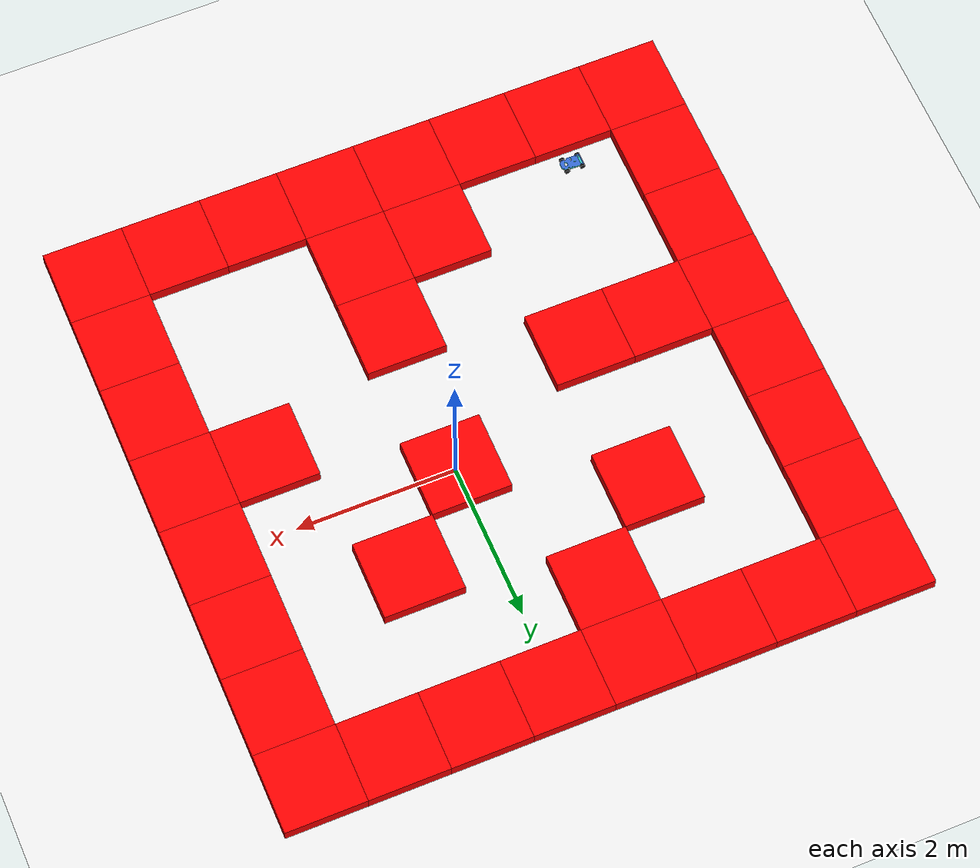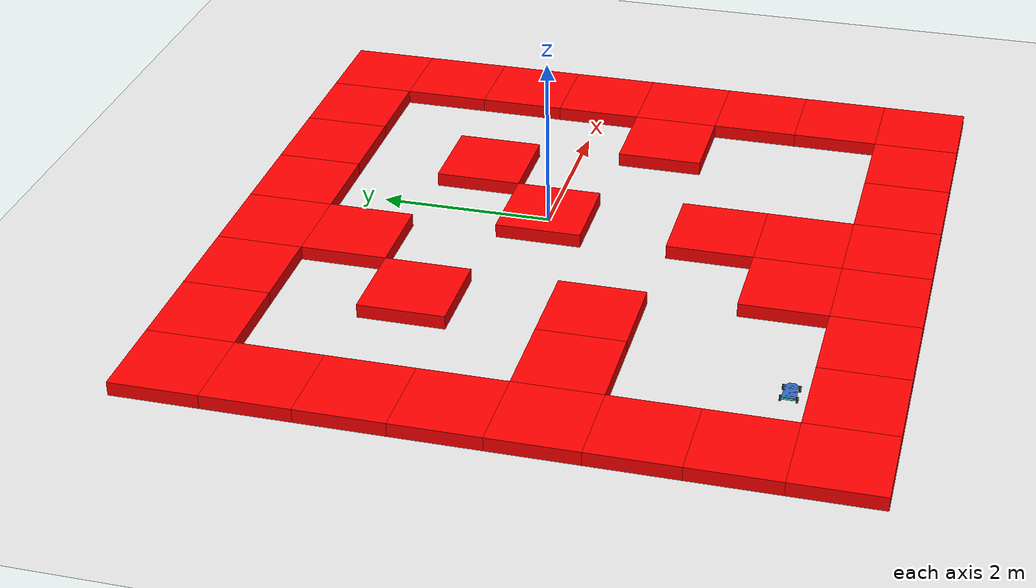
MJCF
<mujoco model="ackermann_maze_flat">

  <compiler angle="degree"/>

  <default>
    <geom solref="0.01 1" solimp="0.95 0.98 0.002"/>
  </default>

  <option timestep="0.002" gravity="0 0 -9.81"/>

  <asset>
    <mesh name="Base" file="../CAD Models/Base.stl"/>
  </asset>

  <asset>
    <mesh name="Ceiling" file="../CAD Models/Ceiling.stl"/>
  </asset>

  <worldbody>
    <light name="top" pos="0 0 3" dir="0 0 -1" diffuse=".6 .6 .6" specular="0.1 0.1 0.1"/>
    <geom name="floor" pos="0 0 0" size="40 40 .1" type="plane"
      rgba="0.9 0.9 0.9 1" friction="1 0.005 0.0001"/>

    <!-- Maze obstacles (from mobile-mujoco-environments/envs/assets/maze.xml) -->
    <body name="obstacle_0">
      <geom name="obstacle_0" type="box" size="0.5 0.5 0.1" pos="-4.0 -4.0 0.05" rgba="1 0 0 1"/>
    </body>
    <body name="obstacle_1">
      <geom name="obstacle_1" type="box" size="0.5 0.5 0.1" pos="-4.0 -3.0 0.05" rgba="1 0 0 1"/>
    </body>
    <body name="obstacle_2">
      <geom name="obstacle_2" type="box" size="0.5 0.5 0.1" pos="-4.0 -2.0 0.05" rgba="1 0 0 1"/>
    </body>
    <body name="obstacle_3">
      <geom name="obstacle_3" type="box" size="0.5 0.5 0.1" pos="-4.0 -1.0 0.05" rgba="1 0 0 1"/>
    </body>
    <body name="obstacle_4">
      <geom name="obstacle_4" type="box" size="0.5 0.5 0.1" pos="-4.0 0.0 0.05" rgba="1 0 0 1"/>
    </body>
    <body name="obstacle_5">
      <geom name="obstacle_5" type="box" size="0.5 0.5 0.1" pos="-4.0 1.0 0.05" rgba="1 0 0 1"/>
    </body>
    <body name="obstacle_6">
      <geom name="obstacle_6" type="box" size="0.5 0.5 0.1" pos="-4.0 2.0 0.05" rgba="1 0 0 1"/>
    </body>
    <body name="obstacle_7">
      <geom name="obstacle_7" type="box" size="0.5 0.5 0.1" pos="-4.0 3.0 0.05" rgba="1 0 0 1"/>
    </body>
    <body name="obstacle_8">
      <geom name="obstacle_8" type="box" size="0.5 0.5 0.1" pos="-3.0 -4.0 0.05" rgba="1 0 0 1"/>
    </body>
    <body name="obstacle_9">
      <geom name="obstacle_9" type="box" size="0.5 0.5 0.1" pos="-3.0 -1.0 0.05" rgba="1 0 0 1"/>
    </body>
    <body name="obstacle_10">
      <geom name="obstacle_10" type="box" size="0.5 0.5 0.1" pos="-3.0 3.0 0.05" rgba="1 0 0 1"/>
    </body>
    <body name="obstacle_11">
      <geom name="obstacle_11" type="box" size="0.5 0.5 0.1" pos="-2.0 -4.0 0.05" rgba="1 0 0 1"/>
    </body>
    <body name="obstacle_12">
      <geom name="obstacle_12" type="box" size="0.5 0.5 0.1" pos="-2.0 -1.0 0.05" rgba="1 0 0 1"/>
    </body>
    <body name="obstacle_13">
      <geom name="obstacle_13" type="box" size="0.5 0.5 0.1" pos="-2.0 1.0 0.05" rgba="1 0 0 1"/>
    </body>
    <body name="obstacle_14">
      <geom name="obstacle_14" type="box" size="0.5 0.5 0.1" pos="-2.0 3.0 0.05" rgba="1 0 0 1"/>
    </body>
    <body name="obstacle_15">
      <geom name="obstacle_15" type="box" size="0.5 0.5 0.1" pos="-1.0 -4.0 0.05" rgba="1 0 0 1"/>
    </body>
    <body name="obstacle_16">
      <geom name="obstacle_16" type="box" size="0.5 0.5 0.1" pos="-1.0 -3.0 0.05" rgba="1 0 0 1"/>
    </body>
    <body name="obstacle_17">
      <geom name="obstacle_17" type="box" size="0.5 0.5 0.1" pos="-1.0 2.0 0.05" rgba="1 0 0 1"/>
    </body>
    <body name="obstacle_18">
      <geom name="obstacle_18" type="box" size="0.5 0.5 0.1" pos="-1.0 3.0 0.05" rgba="1 0 0 1"/>
    </body>
    <body name="obstacle_19">
      <geom name="obstacle_19" type="box" size="0.5 0.5 0.1" pos="0.0 -4.0 0.05" rgba="1 0 0 1"/>
    </body>
    <body name="obstacle_20">
      <geom name="obstacle_20" type="box" size="0.5 0.5 0.1" pos="0.0 -3.0 0.05" rgba="1 0 0 1"/>
    </body>
    <body name="obstacle_21">
      <geom name="obstacle_21" type="box" size="0.5 0.5 0.1" pos="0.0 -2.0 0.05" rgba="1 0 0 1"/>
    </body>
    <body name="obstacle_22">
      <geom name="obstacle_22" type="box" size="0.5 0.5 0.1" pos="0.0 0.0 0.05" rgba="1 0 0 1"/>
    </body>
    <body name="obstacle_23">
      <geom name="obstacle_23" type="box" size="0.5 0.5 0.1" pos="0.0 3.0 0.05" rgba="1 0 0 1"/>
    </body>
    <body name="obstacle_24">
      <geom name="obstacle_24" type="box" size="0.5 0.5 0.1" pos="1.0 -4.0 0.05" rgba="1 0 0 1"/>
    </body>
    <body name="obstacle_25">
      <geom name="obstacle_25" type="box" size="0.5 0.5 0.1" pos="1.0 1.0 0.05" rgba="1 0 0 1"/>
    </body>
    <body name="obstacle_26">
      <geom name="obstacle_26" type="box" size="0.5 0.5 0.1" pos="1.0 3.0 0.05" rgba="1 0 0 1"/>
    </body>
    <body name="obstacle_27">
      <geom name="obstacle_27" type="box" size="0.5 0.5 0.1" pos="2.0 -4.0 0.05" rgba="1 0 0 1"/>
    </body>
    <body name="obstacle_28">
      <geom name="obstacle_28" type="box" size="0.5 0.5 0.1" pos="2.0 -1.0 0.05" rgba="1 0 0 1"/>
    </body>
    <body name="obstacle_29">
      <geom name="obstacle_29" type="box" size="0.5 0.5 0.1" pos="2.0 3.0 0.05" rgba="1 0 0 1"/>
    </body>
    <body name="obstacle_30">
      <geom name="obstacle_30" type="box" size="0.5 0.5 0.1" pos="3.0 -4.0 0.05" rgba="1 0 0 1"/>
    </body>
    <body name="obstacle_31">
      <geom name="obstacle_31" type="box" size="0.5 0.5 0.1" pos="3.0 -3.0 0.05" rgba="1 0 0 1"/>
    </body>
    <body name="obstacle_32">
      <geom name="obstacle_32" type="box" size="0.5 0.5 0.1" pos="3.0 -2.0 0.05" rgba="1 0 0 1"/>
    </body>
    <body name="obstacle_33">
      <geom name="obstacle_33" type="box" size="0.5 0.5 0.1" pos="3.0 -1.0 0.05" rgba="1 0 0 1"/>
    </body>
    <body name="obstacle_34">
      <geom name="obstacle_34" type="box" size="0.5 0.5 0.1" pos="3.0 0.0 0.05" rgba="1 0 0 1"/>
    </body>
    <body name="obstacle_35">
      <geom name="obstacle_35" type="box" size="0.5 0.5 0.1" pos="3.0 1.0 0.05" rgba="1 0 0 1"/>
    </body>
    <body name="obstacle_36">
      <geom name="obstacle_36" type="box" size="0.5 0.5 0.1" pos="3.0 2.0 0.05" rgba="1 0 0 1"/>
    </body>
    <body name="obstacle_37">
      <geom name="obstacle_37" type="box" size="0.5 0.5 0.1" pos="3.0 3.0 0.05" rgba="1 0 0 1"/>
    </body>

    <!-- Ackermann robot (copied from models/ackermann_robot.xml) -->
    <!-- Chassis box: length=0.275, width=0.15, height=0.1 -->
    <!-- size uses half-dimensions -->
    <body name="chassis" pos="-2.9 -3.3 0.09">
      <freejoint/>

      <body name="base">
        <geom name="chassis" type="mesh" mesh="Base" euler="90 -90 0" pos="0 0 -0.03" mass="5"
              conaffinity="0" contype="0" rgba="0.2 0.8 0.8 1"/>
      </body>

      <body name="ceiling">
        <geom type="mesh" mesh="Ceiling" pos="0 0 -0.01" euler="90 -90 0"  mass="5"
              conaffinity="0" contype="0" rgba="0.2 0.4 0.8 1"/>
      </body>

      <!-- Rear wheels (with encoders) at x=-0.12, y=±0.06, z=0.065; radius=0.065 -->
      <body name="rear_left" pos="-0.10 0.087 -0.0325">
        <inertial pos="0 0 0" mass="0.05" diaginertia="1e-4 1e-4 1e-4"/>
        <geom name="rear_left_wheel_geom" type="cylinder" size="0.0325 0.01"
          euler="90 0 0" rgba="0.1 0.1 0.1 1" contype="1" conaffinity="1"
          friction="1.4 0.08 0.0015"/>
        <joint name="rear_left_wheel" type="hinge" axis="0 1 0" damping="0.15" frictionloss="0.02" armature="0.002"/>
      </body>
      <body name="rear_right" pos="-0.10 -0.087 -0.0325">
        <inertial pos="0 0 0" mass="0.05" diaginertia="1e-4 1e-4 1e-4"/>
        <geom name="rear_right_wheel_geom" type="cylinder" size="0.0325 0.01"
          euler="90 0 0" rgba="0.1 0.1 0.1 1" contype="1" conaffinity="1"
          friction="1.4 0.08 0.0015"/>
        <joint name="rear_right_wheel" type="hinge" axis="0 1 0" damping="0.15" frictionloss="0.02" armature="0.002"/>
      </body>

      <!-- Front wheels with steering at x=+0.12, y=±0.06, z=0.065; radius=0.065 -->
      <body name="front_left_steer" pos="0.10 0.087 -0.0325">
        <inertial pos="0 0 0" mass="0.1" diaginertia="1e-4 1e-4 1e-4"/>
        <!-- Steering hinge about Z (controlled) -->
        <joint name="front_left_steer" type="hinge" axis="0 0 1" range="-35 35" damping="0.25" frictionloss="0.005"/>
        <body name="front_left" pos="0 0 0">
          <inertial pos="0 0 0" mass="0.05" diaginertia="1e-4 1e-4 1e-4"/>
          <geom name="front_left_wheel_geom" type="cylinder" size="0.0325 0.01"
            euler="90 0 0" rgba="0.1 0.1 0.1 1" contype="1" conaffinity="1"/>
          <!-- Wheel spin hinge about Y (free) -->
          <joint name="front_left_wheel" type="hinge" axis="0 1 0" damping="0.12" frictionloss="0.012" armature="0.0015"/>
        </body>
      </body>
      <body name="front_right_steer" pos="0.10 -0.087 -0.0325">
        <inertial pos="0 0 0" mass="0.1" diaginertia="1e-4 1e-4 1e-4"/>
        <!-- Steering hinge about Z (controlled) -->
        <joint name="front_right_steer" type="hinge" axis="0 0 1" range="-35 35" damping="0.25" frictionloss="0.005"/>
        <body name="front_right" pos="0 0 0">
          <inertial pos="0 0 0" mass="0.05" diaginertia="1e-4 1e-4 1e-4"/>
          <geom name="front_right_wheel_geom" type="cylinder" size="0.0325 0.01"
            euler="90 0 0" rgba="0.1 0.1 0.1 1" contype="1" conaffinity="1"/>
          <!-- Wheel spin hinge about Y (free) -->
          <joint name="front_right_wheel" type="hinge" axis="0 1 0" damping="0.12" frictionloss="0.012" armature="0.0015"/>
        </body>
      </body>

      <!-- 360-degree lidar: mount near front center and spin 36 beams (10 deg spacing) -->
      <body name="lidar_360" pos="0 0 0.035">
        <!-- Orient each site using zaxis to define horizontal ray direction -->
        <site name="lidar_360_s00" pos="0 0 0" size="0.003" type="sphere" rgba="0.9 0.2 0.2 1" zaxis="1 0 0"/>
        <site name="lidar_360_s01" pos="0 0 0" size="0.003" type="sphere" rgba="0.9 0.2 0.2 1" zaxis="0.984807753 0.173648178 0"/>
        <site name="lidar_360_s02" pos="0 0 0" size="0.003" type="sphere" rgba="0.9 0.2 0.2 1" zaxis="0.93969262 0.342020143 0"/>
        <site name="lidar_360_s03" pos="0 0 0" size="0.003" type="sphere" rgba="0.9 0.2 0.2 1" zaxis="0.866025404 0.5 0"/>
        <site name="lidar_360_s04" pos="0 0 0" size="0.003" type="sphere" rgba="0.9 0.2 0.2 1" zaxis="0.766044443 0.64278761 0"/>
        <site name="lidar_360_s05" pos="0 0 0" size="0.003" type="sphere" rgba="0.9 0.2 0.2 1" zaxis="0.64278761 0.766044443 0"/>
        <site name="lidar_360_s06" pos="0 0 0" size="0.003" type="sphere" rgba="0.9 0.2 0.2 1" zaxis="0.5 0.866025404 0"/>
        <site name="lidar_360_s07" pos="0 0 0" size="0.003" type="sphere" rgba="0.9 0.2 0.2 1" zaxis="0.342020143 0.93969262 0"/>
        <site name="lidar_360_s08" pos="0 0 0" size="0.003" type="sphere" rgba="0.9 0.2 0.2 1" zaxis="0.173648178 0.984807753 0"/>
        <site name="lidar_360_s09" pos="0 0 0" size="0.003" type="sphere" rgba="0.9 0.2 0.2 1" zaxis="0 1 0"/>
        <site name="lidar_360_s10" pos="0 0 0" size="0.003" type="sphere" rgba="0.9 0.2 0.2 1" zaxis="-0.173648178 0.984807753 0"/>
        <site name="lidar_360_s11" pos="0 0 0" size="0.003" type="sphere" rgba="0.9 0.2 0.2 1" zaxis="-0.342020143 0.93969262 0"/>
        <site name="lidar_360_s12" pos="0 0 0" size="0.003" type="sphere" rgba="0.9 0.2 0.2 1" zaxis="-0.5 0.866025404 0"/>
        <site name="lidar_360_s13" pos="0 0 0" size="0.003" type="sphere" rgba="0.9 0.2 0.2 1" zaxis="-0.64278761 0.766044443 0"/>
        <site name="lidar_360_s14" pos="0 0 0" size="0.003" type="sphere" rgba="0.9 0.2 0.2 1" zaxis="-0.766044443 0.64278761 0"/>
        <site name="lidar_360_s15" pos="0 0 0" size="0.003" type="sphere" rgba="0.9 0.2 0.2 1" zaxis="-0.866025404 0.5 0"/>
        <site name="lidar_360_s16" pos="0 0 0" size="0.003" type="sphere" rgba="0.9 0.2 0.2 1" zaxis="-0.93969262 0.342020143 0"/>
        <site name="lidar_360_s17" pos="0 0 0" size="0.003" type="sphere" rgba="0.9 0.2 0.2 1" zaxis="-0.984807753 0.173648178 0"/>
        <site name="lidar_360_s18" pos="0 0 0" size="0.003" type="sphere" rgba="0.9 0.2 0.2 1" zaxis="-1 0 0"/>
        <site name="lidar_360_s19" pos="0 0 0" size="0.003" type="sphere" rgba="0.9 0.2 0.2 1" zaxis="-0.984807753 -0.173648178 0"/>
        <site name="lidar_360_s20" pos="0 0 0" size="0.003" type="sphere" rgba="0.9 0.2 0.2 1" zaxis="-0.93969262 -0.342020143 0"/>
        <site name="lidar_360_s21" pos="0 0 0" size="0.003" type="sphere" rgba="0.9 0.2 0.2 1" zaxis="-0.866025404 -0.5 0"/>
        <site name="lidar_360_s22" pos="0 0 0" size="0.003" type="sphere" rgba="0.9 0.2 0.2 1" zaxis="-0.766044443 -0.64278761 0"/>
        <site name="lidar_360_s23" pos="0 0 0" size="0.003" type="sphere" rgba="0.9 0.2 0.2 1" zaxis="-0.64278761 -0.766044443 0"/>
        <site name="lidar_360_s24" pos="0 0 0" size="0.003" type="sphere" rgba="0.9 0.2 0.2 1" zaxis="-0.5 -0.866025404 0"/>
        <site name="lidar_360_s25" pos="0 0 0" size="0.003" type="sphere" rgba="0.9 0.2 0.2 1" zaxis="-0.342020143 -0.93969262 0"/>
        <site name="lidar_360_s26" pos="0 0 0" size="0.003" type="sphere" rgba="0.9 0.2 0.2 1" zaxis="-0.173648178 -0.984807753 0"/>
        <site name="lidar_360_s27" pos="0 0 0" size="0.003" type="sphere" rgba="0.9 0.2 0.2 1" zaxis="0 -1 0"/>
        <site name="lidar_360_s28" pos="0 0 0" size="0.003" type="sphere" rgba="0.9 0.2 0.2 1" zaxis="0.173648178 -0.984807753 0"/>
        <site name="lidar_360_s29" pos="0 0 0" size="0.003" type="sphere" rgba="0.9 0.2 0.2 1" zaxis="0.342020143 -0.93969262 0"/>
        <site name="lidar_360_s30" pos="0 0 0" size="0.003" type="sphere" rgba="0.9 0.2 0.2 1" zaxis="0.5 -0.866025404 0"/>
        <site name="lidar_360_s31" pos="0 0 0" size="0.003" type="sphere" rgba="0.9 0.2 0.2 1" zaxis="0.64278761 -0.766044443 0"/>
        <site name="lidar_360_s32" pos="0 0 0" size="0.003" type="sphere" rgba="0.9 0.2 0.2 1" zaxis="0.766044443 -0.64278761 0"/>
        <site name="lidar_360_s33" pos="0 0 0" size="0.003" type="sphere" rgba="0.9 0.2 0.2 1" zaxis="0.866025404 -0.5 0"/>
        <site name="lidar_360_s34" pos="0 0 0" size="0.003" type="sphere" rgba="0.9 0.2 0.2 1" zaxis="0.93969262 -0.342020143 0"/>
        <site name="lidar_360_s35" pos="0 0 0" size="0.003" type="sphere" rgba="0.9 0.2 0.2 1" zaxis="0.984807753 -0.173648178 0"/>
      </body>

    </body>
  </worldbody>

  <sensor>
    <!-- Encoders for rear wheel rotation -->
    <jointpos name="rear_left_encoder" joint="rear_left_wheel"/>
    <jointpos name="rear_right_encoder" joint="rear_right_wheel"/>

    <!-- Optional: expose front steering angles and wheel spins too -->
    <jointpos name="front_left_steer_angle" joint="front_left_steer"/>
    <jointpos name="front_right_steer_angle" joint="front_right_steer"/>
    <jointpos name="front_left_wheel_pos" joint="front_left_wheel"/>
    <jointpos name="front_right_wheel_pos" joint="front_right_wheel"/>

    <!-- 360-degree lidar rangefinders for each site -->
    <rangefinder name="rf_360_s00" site="lidar_360_s00"/>
    <rangefinder name="rf_360_s01" site="lidar_360_s01"/>
    <rangefinder name="rf_360_s02" site="lidar_360_s02"/>
    <rangefinder name="rf_360_s03" site="lidar_360_s03"/>
    <rangefinder name="rf_360_s04" site="lidar_360_s04"/>
    <rangefinder name="rf_360_s05" site="lidar_360_s05"/>
    <rangefinder name="rf_360_s06" site="lidar_360_s06"/>
    <rangefinder name="rf_360_s07" site="lidar_360_s07"/>
    <rangefinder name="rf_360_s08" site="lidar_360_s08"/>
    <rangefinder name="rf_360_s09" site="lidar_360_s09"/>
    <rangefinder name="rf_360_s10" site="lidar_360_s10"/>
    <rangefinder name="rf_360_s11" site="lidar_360_s11"/>
    <rangefinder name="rf_360_s12" site="lidar_360_s12"/>
    <rangefinder name="rf_360_s13" site="lidar_360_s13"/>
    <rangefinder name="rf_360_s14" site="lidar_360_s14"/>
    <rangefinder name="rf_360_s15" site="lidar_360_s15"/>
    <rangefinder name="rf_360_s16" site="lidar_360_s16"/>
    <rangefinder name="rf_360_s17" site="lidar_360_s17"/>
    <rangefinder name="rf_360_s18" site="lidar_360_s18"/>
    <rangefinder name="rf_360_s19" site="lidar_360_s19"/>
    <rangefinder name="rf_360_s20" site="lidar_360_s20"/>
    <rangefinder name="rf_360_s21" site="lidar_360_s21"/>
    <rangefinder name="rf_360_s22" site="lidar_360_s22"/>
    <rangefinder name="rf_360_s23" site="lidar_360_s23"/>
    <rangefinder name="rf_360_s24" site="lidar_360_s24"/>
    <rangefinder name="rf_360_s25" site="lidar_360_s25"/>
    <rangefinder name="rf_360_s26" site="lidar_360_s26"/>
    <rangefinder name="rf_360_s27" site="lidar_360_s27"/>
    <rangefinder name="rf_360_s28" site="lidar_360_s28"/>
    <rangefinder name="rf_360_s29" site="lidar_360_s29"/>
    <rangefinder name="rf_360_s30" site="lidar_360_s30"/>
    <rangefinder name="rf_360_s31" site="lidar_360_s31"/>
    <rangefinder name="rf_360_s32" site="lidar_360_s32"/>
    <rangefinder name="rf_360_s33" site="lidar_360_s33"/>
    <rangefinder name="rf_360_s34" site="lidar_360_s34"/>
    <rangefinder name="rf_360_s35" site="lidar_360_s35"/>
  </sensor>

  <!-- Removed equality coupling; left and right steering are controlled independently -->

  <actuator>
    <!-- Steering: keep position actuator -->
    <position name="front_steer_left" joint="front_left_steer" kp="30" kv="4" forcerange="-10 10"/>
    <position name="front_steer_right" joint="front_right_steer" kp="30" kv="4" forcerange="-10 10"/>

    <!-- Rear wheel torque actuators (instead of velocity control) -->
    <motor name="rear_left_drive" joint="rear_left_wheel" forcerange="-2 2"/>
    <motor name="rear_right_drive" joint="rear_right_wheel" forcerange="-2 2"/>
  </actuator>

</mujoco>
